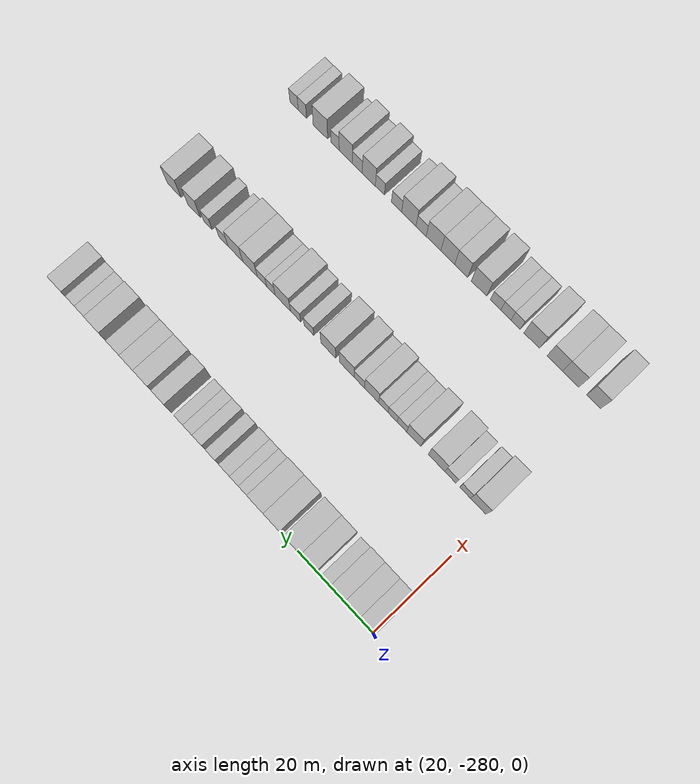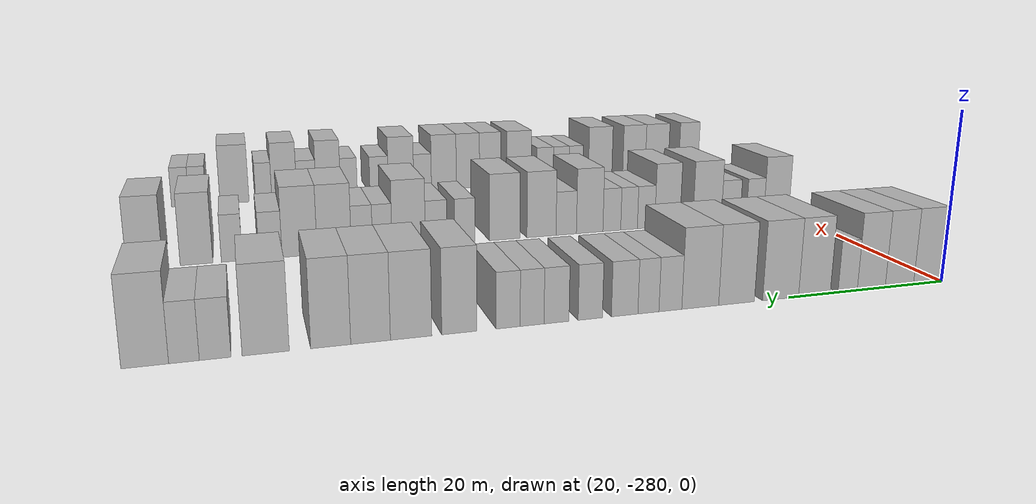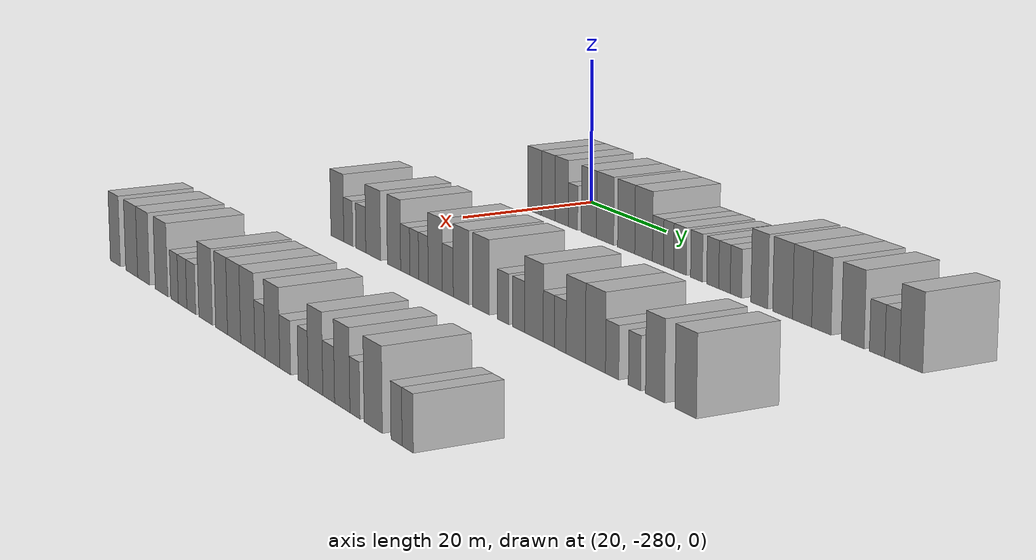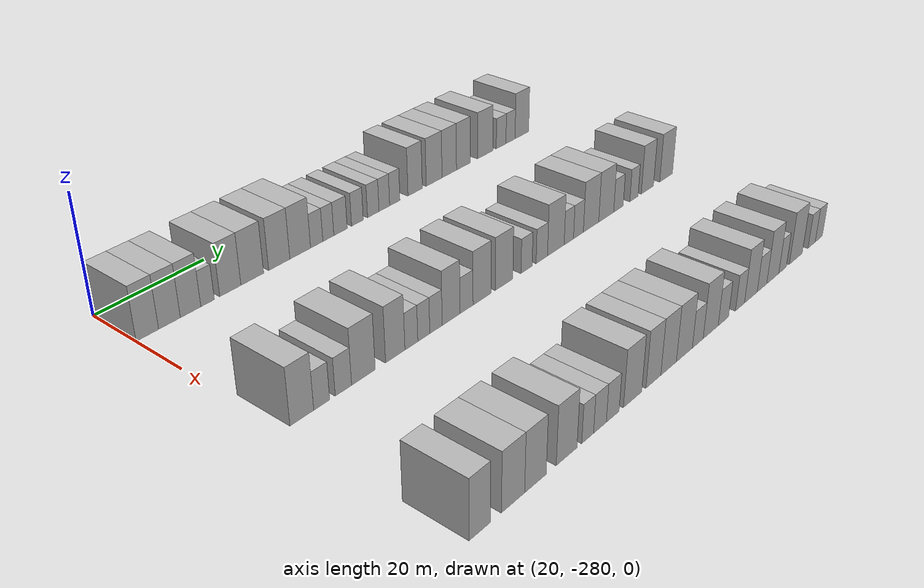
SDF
<sdf version="1.6">
 <world name="default">
  <model name="building_1">
   <static>1</static>
   <pose>25.0000 -278.0907 0 0.000000 0.000000 0.000000</pose>
   <link name="link">
    <pose>0 0 4.50 0 0 0</pose>
    <collision name="collision"><geometry><box><size>10.0000 3.8187 9.0000</size></box></geometry></collision>
    <visual name="visual">
     <cast_shadows>0</cast_shadows>
     <geometry><box><size>10.0000 3.8187 9.0000</size></box></geometry>
     <material>
      <script>
       <uri>model://HANNAS_wall/materials/scripts</uri>
       <uri>model://HANNAS_wall/materials/textures</uri>
       <name>vrc/HANNAS_wall</name>
      </script>
     </material>
    </visual>
   </link>
  </model>
  <model name="building_2">
   <static>1</static>
   <pose>25.0000 -274.2839 0 0.000000 0.000000 0.000000</pose>
   <link name="link">
    <pose>0 0 4.50 0 0 0</pose>
    <collision name="collision"><geometry><box><size>10.0000 3.7948 9.0000</size></box></geometry></collision>
    <visual name="visual">
     <cast_shadows>0</cast_shadows>
     <geometry><box><size>10.0000 3.7948 9.0000</size></box></geometry>
     <material>
      <script>
       <uri>model://HANNAS_wall/materials/scripts</uri>
       <uri>model://HANNAS_wall/materials/textures</uri>
       <name>vrc/HANNAS_wall</name>
      </script>
     </material>
    </visual>
   </link>
  </model>
  <model name="building_3">
   <static>1</static>
   <pose>25.0000 -270.5470 0 0.000000 0.000000 0.000000</pose>
   <link name="link">
    <pose>0 0 4.50 0 0 0</pose>
    <collision name="collision"><geometry><box><size>10.0000 3.6789 9.0000</size></box></geometry></collision>
    <visual name="visual">
     <cast_shadows>0</cast_shadows>
     <geometry><box><size>10.0000 3.6789 9.0000</size></box></geometry>
     <material>
      <script>
       <uri>model://HANNAS_wall/materials/scripts</uri>
       <uri>model://HANNAS_wall/materials/textures</uri>
       <name>vrc/HANNAS_wall</name>
      </script>
     </material>
    </visual>
   </link>
  </model>
  <model name="building_4">
   <static>1</static>
   <pose>25.0000 -267.4620 0 0.000000 0.000000 0.000000</pose>
   <link name="link">
    <pose>0 0 3.00 0 0 0</pose>
    <collision name="collision"><geometry><box><size>10.0000 2.4911 6.0000</size></box></geometry></collision>
    <visual name="visual">
     <cast_shadows>0</cast_shadows>
     <geometry><box><size>10.0000 2.4911 6.0000</size></box></geometry>
     <material>
      <script>
       <uri>model://HANNAS_wall/materials/scripts</uri>
       <uri>model://HANNAS_wall/materials/textures</uri>
       <name>vrc/HANNAS_wall</name>
      </script>
     </material>
    </visual>
   </link>
  </model>
  <model name="building_5">
   <static>1</static>
   <pose>25.0000 -263.2057 0 0.000000 0.000000 0.000000</pose>
   <link name="link">
    <pose>0 0 4.50 0 0 0</pose>
    <collision name="collision"><geometry><box><size>10.0000 4.0216 9.0000</size></box></geometry></collision>
    <visual name="visual">
     <cast_shadows>0</cast_shadows>
     <geometry><box><size>10.0000 4.0216 9.0000</size></box></geometry>
     <material>
      <script>
       <uri>model://HANNAS_wall/materials/scripts</uri>
       <uri>model://HANNAS_wall/materials/textures</uri>
       <name>vrc/HANNAS_wall</name>
      </script>
     </material>
    </visual>
   </link>
  </model>
  <model name="building_6">
   <static>1</static>
   <pose>25.0000 -258.9625 0 0.000000 0.000000 0.000000</pose>
   <link name="link">
    <pose>0 0 4.50 0 0 0</pose>
    <collision name="collision"><geometry><box><size>10.0000 4.4649 9.0000</size></box></geometry></collision>
    <visual name="visual">
     <cast_shadows>0</cast_shadows>
     <geometry><box><size>10.0000 4.4649 9.0000</size></box></geometry>
     <material>
      <script>
       <uri>model://HANNAS_wall/materials/scripts</uri>
       <uri>model://HANNAS_wall/materials/textures</uri>
       <name>vrc/HANNAS_wall</name>
      </script>
     </material>
    </visual>
   </link>
  </model>
  <model name="building_7">
   <static>1</static>
   <pose>25.0000 -253.5668 0 0.000000 0.000000 0.000000</pose>
   <link name="link">
    <pose>0 0 4.50 0 0 0</pose>
    <collision name="collision"><geometry><box><size>10.0000 4.3265 9.0000</size></box></geometry></collision>
    <visual name="visual">
     <cast_shadows>0</cast_shadows>
     <geometry><box><size>10.0000 4.3265 9.0000</size></box></geometry>
     <material>
      <script>
       <uri>model://HANNAS_wall/materials/scripts</uri>
       <uri>model://HANNAS_wall/materials/textures</uri>
       <name>vrc/HANNAS_wall</name>
      </script>
     </material>
    </visual>
   </link>
  </model>
  <model name="building_8">
   <static>1</static>
   <pose>25.0000 -249.2232 0 0.000000 0.000000 0.000000</pose>
   <link name="link">
    <pose>0 0 4.50 0 0 0</pose>
    <collision name="collision"><geometry><box><size>10.0000 4.3608 9.0000</size></box></geometry></collision>
    <visual name="visual">
     <cast_shadows>0</cast_shadows>
     <geometry><box><size>10.0000 4.3608 9.0000</size></box></geometry>
     <material>
      <script>
       <uri>model://HANNAS_wall/materials/scripts</uri>
       <uri>model://HANNAS_wall/materials/textures</uri>
       <name>vrc/HANNAS_wall</name>
      </script>
     </material>
    </visual>
   </link>
  </model>
  <model name="building_9">
   <static>1</static>
   <pose>25.0000 -245.7156 0 0.000000 0.000000 0.000000</pose>
   <link name="link">
    <pose>0 0 3.00 0 0 0</pose>
    <collision name="collision"><geometry><box><size>10.0000 2.6543 6.0000</size></box></geometry></collision>
    <visual name="visual">
     <cast_shadows>0</cast_shadows>
     <geometry><box><size>10.0000 2.6543 6.0000</size></box></geometry>
     <material>
      <script>
       <uri>model://HANNAS_wall/materials/scripts</uri>
       <uri>model://HANNAS_wall/materials/textures</uri>
       <name>vrc/HANNAS_wall</name>
      </script>
     </material>
    </visual>
   </link>
  </model>
  <model name="building_10">
   <static>1</static>
   <pose>25.0000 -243.1820 0 0.000000 0.000000 0.000000</pose>
   <link name="link">
    <pose>0 0 3.00 0 0 0</pose>
    <collision name="collision"><geometry><box><size>10.0000 2.4129 6.0000</size></box></geometry></collision>
    <visual name="visual">
     <cast_shadows>0</cast_shadows>
     <geometry><box><size>10.0000 2.4129 6.0000</size></box></geometry>
     <material>
      <script>
       <uri>model://HANNAS_wall/materials/scripts</uri>
       <uri>model://HANNAS_wall/materials/textures</uri>
       <name>vrc/HANNAS_wall</name>
      </script>
     </material>
    </visual>
   </link>
  </model>
  <model name="building_11">
   <static>1</static>
   <pose>25.0000 -240.4807 0 0.000000 0.000000 0.000000</pose>
   <link name="link">
    <pose>0 0 3.00 0 0 0</pose>
    <collision name="collision"><geometry><box><size>10.0000 2.9897 6.0000</size></box></geometry></collision>
    <visual name="visual">
     <cast_shadows>0</cast_shadows>
     <geometry><box><size>10.0000 2.9897 6.0000</size></box></geometry>
     <material>
      <script>
       <uri>model://HANNAS_wall/materials/scripts</uri>
       <uri>model://HANNAS_wall/materials/textures</uri>
       <name>vrc/HANNAS_wall</name>
      </script>
     </material>
    </visual>
   </link>
  </model>
  <model name="building_12">
   <static>1</static>
   <pose>25.0000 -236.6400 0 0.000000 0.000000 0.000000</pose>
   <link name="link">
    <pose>0 0 3.00 0 0 0</pose>
    <collision name="collision"><geometry><box><size>10.0000 2.6918 6.0000</size></box></geometry></collision>
    <visual name="visual">
     <cast_shadows>0</cast_shadows>
     <geometry><box><size>10.0000 2.6918 6.0000</size></box></geometry>
     <material>
      <script>
       <uri>model://HANNAS_wall/materials/scripts</uri>
       <uri>model://HANNAS_wall/materials/textures</uri>
       <name>vrc/HANNAS_wall</name>
      </script>
     </material>
    </visual>
   </link>
  </model>
  <model name="building_13">
   <static>1</static>
   <pose>25.0000 -232.9424 0 0.000000 0.000000 0.000000</pose>
   <link name="link">
    <pose>0 0 3.00 0 0 0</pose>
    <collision name="collision"><geometry><box><size>10.0000 2.7034 6.0000</size></box></geometry></collision>
    <visual name="visual">
     <cast_shadows>0</cast_shadows>
     <geometry><box><size>10.0000 2.7034 6.0000</size></box></geometry>
     <material>
      <script>
       <uri>model://HANNAS_wall/materials/scripts</uri>
       <uri>model://HANNAS_wall/materials/textures</uri>
       <name>vrc/HANNAS_wall</name>
      </script>
     </material>
    </visual>
   </link>
  </model>
  <model name="building_14">
   <static>1</static>
   <pose>25.0000 -230.3137 0 0.000000 0.000000 0.000000</pose>
   <link name="link">
    <pose>0 0 3.00 0 0 0</pose>
    <collision name="collision"><geometry><box><size>10.0000 2.5539 6.0000</size></box></geometry></collision>
    <visual name="visual">
     <cast_shadows>0</cast_shadows>
     <geometry><box><size>10.0000 2.5539 6.0000</size></box></geometry>
     <material>
      <script>
       <uri>model://HANNAS_wall/materials/scripts</uri>
       <uri>model://HANNAS_wall/materials/textures</uri>
       <name>vrc/HANNAS_wall</name>
      </script>
     </material>
    </visual>
   </link>
  </model>
  <model name="building_15">
   <static>1</static>
   <pose>25.0000 -227.7758 0 0.000000 0.000000 0.000000</pose>
   <link name="link">
    <pose>0 0 3.00 0 0 0</pose>
    <collision name="collision"><geometry><box><size>10.0000 2.5219 6.0000</size></box></geometry></collision>
    <visual name="visual">
     <cast_shadows>0</cast_shadows>
     <geometry><box><size>10.0000 2.5219 6.0000</size></box></geometry>
     <material>
      <script>
       <uri>model://HANNAS_wall/materials/scripts</uri>
       <uri>model://HANNAS_wall/materials/textures</uri>
       <name>vrc/HANNAS_wall</name>
      </script>
     </material>
    </visual>
   </link>
  </model>
  <model name="building_16">
   <static>1</static>
   <pose>25.0000 -222.7067 0 0.000000 0.000000 0.000000</pose>
   <link name="link">
    <pose>0 0 4.50 0 0 0</pose>
    <collision name="collision"><geometry><box><size>10.0000 3.6162 9.0000</size></box></geometry></collision>
    <visual name="visual">
     <cast_shadows>0</cast_shadows>
     <geometry><box><size>10.0000 3.6162 9.0000</size></box></geometry>
     <material>
      <script>
       <uri>model://HANNAS_wall/materials/scripts</uri>
       <uri>model://HANNAS_wall/materials/textures</uri>
       <name>vrc/HANNAS_wall</name>
      </script>
     </material>
    </visual>
   </link>
  </model>
  <model name="building_17">
   <static>1</static>
   <pose>25.0000 -217.8327 0 0.000000 0.000000 0.000000</pose>
   <link name="link">
    <pose>0 0 4.50 0 0 0</pose>
    <collision name="collision"><geometry><box><size>10.0000 4.1318 9.0000</size></box></geometry></collision>
    <visual name="visual">
     <cast_shadows>0</cast_shadows>
     <geometry><box><size>10.0000 4.1318 9.0000</size></box></geometry>
     <material>
      <script>
       <uri>model://HANNAS_wall/materials/scripts</uri>
       <uri>model://HANNAS_wall/materials/textures</uri>
       <name>vrc/HANNAS_wall</name>
      </script>
     </material>
    </visual>
   </link>
  </model>
  <model name="building_18">
   <static>1</static>
   <pose>25.0000 -213.8320 0 0.000000 0.000000 0.000000</pose>
   <link name="link">
    <pose>0 0 4.50 0 0 0</pose>
    <collision name="collision"><geometry><box><size>10.0000 3.8697 9.0000</size></box></geometry></collision>
    <visual name="visual">
     <cast_shadows>0</cast_shadows>
     <geometry><box><size>10.0000 3.8697 9.0000</size></box></geometry>
     <material>
      <script>
       <uri>model://HANNAS_wall/materials/scripts</uri>
       <uri>model://HANNAS_wall/materials/textures</uri>
       <name>vrc/HANNAS_wall</name>
      </script>
     </material>
    </visual>
   </link>
  </model>
  <model name="building_19">
   <static>1</static>
   <pose>25.0000 -209.9862 0 0.000000 0.000000 0.000000</pose>
   <link name="link">
    <pose>0 0 4.50 0 0 0</pose>
    <collision name="collision"><geometry><box><size>10.0000 3.8218 9.0000</size></box></geometry></collision>
    <visual name="visual">
     <cast_shadows>0</cast_shadows>
     <geometry><box><size>10.0000 3.8218 9.0000</size></box></geometry>
     <material>
      <script>
       <uri>model://HANNAS_wall/materials/scripts</uri>
       <uri>model://HANNAS_wall/materials/textures</uri>
       <name>vrc/HANNAS_wall</name>
      </script>
     </material>
    </visual>
   </link>
  </model>
  <model name="building_20">
   <static>1</static>
   <pose>25.0000 -203.9006 0 0.000000 0.000000 0.000000</pose>
   <link name="link">
    <pose>0 0 4.50 0 0 0</pose>
    <collision name="collision"><geometry><box><size>10.0000 4.3495 9.0000</size></box></geometry></collision>
    <visual name="visual">
     <cast_shadows>0</cast_shadows>
     <geometry><box><size>10.0000 4.3495 9.0000</size></box></geometry>
     <material>
      <script>
       <uri>model://HANNAS_wall/materials/scripts</uri>
       <uri>model://HANNAS_wall/materials/textures</uri>
       <name>vrc/HANNAS_wall</name>
      </script>
     </material>
    </visual>
   </link>
  </model>
  <model name="building_21">
   <static>1</static>
   <pose>25.0000 -199.3027 0 0.000000 0.000000 0.000000</pose>
   <link name="link">
    <pose>0 0 3.00 0 0 0</pose>
    <collision name="collision"><geometry><box><size>10.0000 2.8463 6.0000</size></box></geometry></collision>
    <visual name="visual">
     <cast_shadows>0</cast_shadows>
     <geometry><box><size>10.0000 2.8463 6.0000</size></box></geometry>
     <material>
      <script>
       <uri>model://HANNAS_wall/materials/scripts</uri>
       <uri>model://HANNAS_wall/materials/textures</uri>
       <name>vrc/HANNAS_wall</name>
      </script>
     </material>
    </visual>
   </link>
  </model>
  <model name="building_22">
   <static>1</static>
   <pose>25.0000 -196.5286 0 0.000000 0.000000 0.000000</pose>
   <link name="link">
    <pose>0 0 3.00 0 0 0</pose>
    <collision name="collision"><geometry><box><size>10.0000 2.7019 6.0000</size></box></geometry></collision>
    <visual name="visual">
     <cast_shadows>0</cast_shadows>
     <geometry><box><size>10.0000 2.7019 6.0000</size></box></geometry>
     <material>
      <script>
       <uri>model://HANNAS_wall/materials/scripts</uri>
       <uri>model://HANNAS_wall/materials/textures</uri>
       <name>vrc/HANNAS_wall</name>
      </script>
     </material>
    </visual>
   </link>
  </model>
  <model name="building_23">
   <static>1</static>
   <pose>25.0000 -193.1107 0 0.000000 0.000000 0.000000</pose>
   <link name="link">
    <pose>0 0 4.50 0 0 0</pose>
    <collision name="collision"><geometry><box><size>10.0000 4.1340 9.0000</size></box></geometry></collision>
    <visual name="visual">
     <cast_shadows>0</cast_shadows>
     <geometry><box><size>10.0000 4.1340 9.0000</size></box></geometry>
     <material>
      <script>
       <uri>model://HANNAS_wall/materials/scripts</uri>
       <uri>model://HANNAS_wall/materials/textures</uri>
       <name>vrc/HANNAS_wall</name>
      </script>
     </material>
    </visual>
   </link>
  </model>
  <model name="building_144">
   <static>1</static>
   <pose>55.0000 -276.9627 0 0.000000 0.000000 0.000000</pose>
   <link name="link">
    <pose>0 0 4.50 0 0 0</pose>
    <collision name="collision"><geometry><box><size>10.0000 4.0746 9.0000</size></box></geometry></collision>
    <visual name="visual">
     <cast_shadows>0</cast_shadows>
     <geometry><box><size>10.0000 4.0746 9.0000</size></box></geometry>
     <material>
      <script>
       <uri>model://HANNAS_wall/materials/scripts</uri>
       <uri>model://HANNAS_wall/materials/textures</uri>
       <name>vrc/HANNAS_wall</name>
      </script>
     </material>
    </visual>
   </link>
  </model>
  <model name="building_145">
   <static>1</static>
   <pose>55.0000 -273.5255 0 0.000000 0.000000 0.000000</pose>
   <link name="link">
    <pose>0 0 3.00 0 0 0</pose>
    <collision name="collision"><geometry><box><size>10.0000 2.7997 6.0000</size></box></geometry></collision>
    <visual name="visual">
     <cast_shadows>0</cast_shadows>
     <geometry><box><size>10.0000 2.7997 6.0000</size></box></geometry>
     <material>
      <script>
       <uri>model://HANNAS_wall/materials/scripts</uri>
       <uri>model://HANNAS_wall/materials/textures</uri>
       <name>vrc/HANNAS_wall</name>
      </script>
     </material>
    </visual>
   </link>
  </model>
  <model name="building_146">
   <static>1</static>
   <pose>55.0000 -269.6340 0 0.000000 0.000000 0.000000</pose>
   <link name="link">
    <pose>0 0 3.00 0 0 0</pose>
    <collision name="collision"><geometry><box><size>10.0000 2.9833 6.0000</size></box></geometry></collision>
    <visual name="visual">
     <cast_shadows>0</cast_shadows>
     <geometry><box><size>10.0000 2.9833 6.0000</size></box></geometry>
     <material>
      <script>
       <uri>model://HANNAS_wall/materials/scripts</uri>
       <uri>model://HANNAS_wall/materials/textures</uri>
       <name>vrc/HANNAS_wall</name>
      </script>
     </material>
    </visual>
   </link>
  </model>
  <model name="building_147">
   <static>1</static>
   <pose>55.0000 -265.9167 0 0.000000 0.000000 0.000000</pose>
   <link name="link">
    <pose>0 0 4.50 0 0 0</pose>
    <collision name="collision"><geometry><box><size>10.0000 4.4515 9.0000</size></box></geometry></collision>
    <visual name="visual">
     <cast_shadows>0</cast_shadows>
     <geometry><box><size>10.0000 4.4515 9.0000</size></box></geometry>
     <material>
      <script>
       <uri>model://HANNAS_wall/materials/scripts</uri>
       <uri>model://HANNAS_wall/materials/textures</uri>
       <name>vrc/HANNAS_wall</name>
      </script>
     </material>
    </visual>
   </link>
  </model>
  <model name="building_148">
   <static>1</static>
   <pose>55.0000 -259.7718 0 0.000000 0.000000 0.000000</pose>
   <link name="link">
    <pose>0 0 4.50 0 0 0</pose>
    <collision name="collision"><geometry><box><size>10.0000 3.8382 9.0000</size></box></geometry></collision>
    <visual name="visual">
     <cast_shadows>0</cast_shadows>
     <geometry><box><size>10.0000 3.8382 9.0000</size></box></geometry>
     <material>
      <script>
       <uri>model://HANNAS_wall/materials/scripts</uri>
       <uri>model://HANNAS_wall/materials/textures</uri>
       <name>vrc/HANNAS_wall</name>
      </script>
     </material>
    </visual>
   </link>
  </model>
  <model name="building_149">
   <static>1</static>
   <pose>55.0000 -256.5441 0 0.000000 0.000000 0.000000</pose>
   <link name="link">
    <pose>0 0 3.00 0 0 0</pose>
    <collision name="collision"><geometry><box><size>10.0000 2.6173 6.0000</size></box></geometry></collision>
    <visual name="visual">
     <cast_shadows>0</cast_shadows>
     <geometry><box><size>10.0000 2.6173 6.0000</size></box></geometry>
     <material>
      <script>
       <uri>model://HANNAS_wall/materials/scripts</uri>
       <uri>model://HANNAS_wall/materials/textures</uri>
       <name>vrc/HANNAS_wall</name>
      </script>
     </material>
    </visual>
   </link>
  </model>
  <model name="building_150">
   <static>1</static>
   <pose>55.0000 -253.9943 0 0.000000 0.000000 0.000000</pose>
   <link name="link">
    <pose>0 0 3.00 0 0 0</pose>
    <collision name="collision"><geometry><box><size>10.0000 2.4825 6.0000</size></box></geometry></collision>
    <visual name="visual">
     <cast_shadows>0</cast_shadows>
     <geometry><box><size>10.0000 2.4825 6.0000</size></box></geometry>
     <material>
      <script>
       <uri>model://HANNAS_wall/materials/scripts</uri>
       <uri>model://HANNAS_wall/materials/textures</uri>
       <name>vrc/HANNAS_wall</name>
      </script>
     </material>
    </visual>
   </link>
  </model>
  <model name="building_151">
   <static>1</static>
   <pose>55.0000 -251.4389 0 0.000000 0.000000 0.000000</pose>
   <link name="link">
    <pose>0 0 3.00 0 0 0</pose>
    <collision name="collision"><geometry><box><size>10.0000 2.6282 6.0000</size></box></geometry></collision>
    <visual name="visual">
     <cast_shadows>0</cast_shadows>
     <geometry><box><size>10.0000 2.6282 6.0000</size></box></geometry>
     <material>
      <script>
       <uri>model://HANNAS_wall/materials/scripts</uri>
       <uri>model://HANNAS_wall/materials/textures</uri>
       <name>vrc/HANNAS_wall</name>
      </script>
     </material>
    </visual>
   </link>
  </model>
  <model name="building_152">
   <static>1</static>
   <pose>55.0000 -248.1934 0 0.000000 0.000000 0.000000</pose>
   <link name="link">
    <pose>0 0 4.50 0 0 0</pose>
    <collision name="collision"><geometry><box><size>10.0000 3.8627 9.0000</size></box></geometry></collision>
    <visual name="visual">
     <cast_shadows>0</cast_shadows>
     <geometry><box><size>10.0000 3.8627 9.0000</size></box></geometry>
     <material>
      <script>
       <uri>model://HANNAS_wall/materials/scripts</uri>
       <uri>model://HANNAS_wall/materials/textures</uri>
       <name>vrc/HANNAS_wall</name>
      </script>
     </material>
    </visual>
   </link>
  </model>
  <model name="building_153">
   <static>1</static>
   <pose>55.0000 -244.7988 0 0.000000 0.000000 0.000000</pose>
   <link name="link">
    <pose>0 0 3.00 0 0 0</pose>
    <collision name="collision"><geometry><box><size>10.0000 2.9266 6.0000</size></box></geometry></collision>
    <visual name="visual">
     <cast_shadows>0</cast_shadows>
     <geometry><box><size>10.0000 2.9266 6.0000</size></box></geometry>
     <material>
      <script>
       <uri>model://HANNAS_wall/materials/scripts</uri>
       <uri>model://HANNAS_wall/materials/textures</uri>
       <name>vrc/HANNAS_wall</name>
      </script>
     </material>
    </visual>
   </link>
  </model>
  <model name="building_154">
   <static>1</static>
   <pose>55.0000 -241.2741 0 0.000000 0.000000 0.000000</pose>
   <link name="link">
    <pose>0 0 4.50 0 0 0</pose>
    <collision name="collision"><geometry><box><size>10.0000 4.1227 9.0000</size></box></geometry></collision>
    <visual name="visual">
     <cast_shadows>0</cast_shadows>
     <geometry><box><size>10.0000 4.1227 9.0000</size></box></geometry>
     <material>
      <script>
       <uri>model://HANNAS_wall/materials/scripts</uri>
       <uri>model://HANNAS_wall/materials/textures</uri>
       <name>vrc/HANNAS_wall</name>
      </script>
     </material>
    </visual>
   </link>
  </model>
  <model name="building_155">
   <static>1</static>
   <pose>55.0000 -236.1195 0 0.000000 0.000000 0.000000</pose>
   <link name="link">
    <pose>0 0 4.50 0 0 0</pose>
    <collision name="collision"><geometry><box><size>10.0000 4.1864 9.0000</size></box></geometry></collision>
    <visual name="visual">
     <cast_shadows>0</cast_shadows>
     <geometry><box><size>10.0000 4.1864 9.0000</size></box></geometry>
     <material>
      <script>
       <uri>model://HANNAS_wall/materials/scripts</uri>
       <uri>model://HANNAS_wall/materials/textures</uri>
       <name>vrc/HANNAS_wall</name>
      </script>
     </material>
    </visual>
   </link>
  </model>
  <model name="building_156">
   <static>1</static>
   <pose>55.0000 -230.6456 0 0.000000 0.000000 0.000000</pose>
   <link name="link">
    <pose>0 0 3.00 0 0 0</pose>
    <collision name="collision"><geometry><box><size>10.0000 2.7615 6.0000</size></box></geometry></collision>
    <visual name="visual">
     <cast_shadows>0</cast_shadows>
     <geometry><box><size>10.0000 2.7615 6.0000</size></box></geometry>
     <material>
      <script>
       <uri>model://HANNAS_wall/materials/scripts</uri>
       <uri>model://HANNAS_wall/materials/textures</uri>
       <name>vrc/HANNAS_wall</name>
      </script>
     </material>
    </visual>
   </link>
  </model>
  <model name="building_157">
   <static>1</static>
   <pose>55.0000 -226.8140 0 0.000000 0.000000 0.000000</pose>
   <link name="link">
    <pose>0 0 3.00 0 0 0</pose>
    <collision name="collision"><geometry><box><size>10.0000 2.9017 6.0000</size></box></geometry></collision>
    <visual name="visual">
     <cast_shadows>0</cast_shadows>
     <geometry><box><size>10.0000 2.9017 6.0000</size></box></geometry>
     <material>
      <script>
       <uri>model://HANNAS_wall/materials/scripts</uri>
       <uri>model://HANNAS_wall/materials/textures</uri>
       <name>vrc/HANNAS_wall</name>
      </script>
     </material>
    </visual>
   </link>
  </model>
  <model name="building_158">
   <static>1</static>
   <pose>55.0000 -223.1755 0 0.000000 0.000000 0.000000</pose>
   <link name="link">
    <pose>0 0 4.50 0 0 0</pose>
    <collision name="collision"><geometry><box><size>10.0000 4.3752 9.0000</size></box></geometry></collision>
    <visual name="visual">
     <cast_shadows>0</cast_shadows>
     <geometry><box><size>10.0000 4.3752 9.0000</size></box></geometry>
     <material>
      <script>
       <uri>model://HANNAS_wall/materials/scripts</uri>
       <uri>model://HANNAS_wall/materials/textures</uri>
       <name>vrc/HANNAS_wall</name>
      </script>
     </material>
    </visual>
   </link>
  </model>
  <model name="building_159">
   <static>1</static>
   <pose>55.0000 -219.7284 0 0.000000 0.000000 0.000000</pose>
   <link name="link">
    <pose>0 0 3.00 0 0 0</pose>
    <collision name="collision"><geometry><box><size>10.0000 2.5190 6.0000</size></box></geometry></collision>
    <visual name="visual">
     <cast_shadows>0</cast_shadows>
     <geometry><box><size>10.0000 2.5190 6.0000</size></box></geometry>
     <material>
      <script>
       <uri>model://HANNAS_wall/materials/scripts</uri>
       <uri>model://HANNAS_wall/materials/textures</uri>
       <name>vrc/HANNAS_wall</name>
      </script>
     </material>
    </visual>
   </link>
  </model>
  <model name="building_160">
   <static>1</static>
   <pose>55.0000 -217.1161 0 0.000000 0.000000 0.000000</pose>
   <link name="link">
    <pose>0 0 3.00 0 0 0</pose>
    <collision name="collision"><geometry><box><size>10.0000 2.7055 6.0000</size></box></geometry></collision>
    <visual name="visual">
     <cast_shadows>0</cast_shadows>
     <geometry><box><size>10.0000 2.7055 6.0000</size></box></geometry>
     <material>
      <script>
       <uri>model://HANNAS_wall/materials/scripts</uri>
       <uri>model://HANNAS_wall/materials/textures</uri>
       <name>vrc/HANNAS_wall</name>
      </script>
     </material>
    </visual>
   </link>
  </model>
  <model name="building_161">
   <static>1</static>
   <pose>55.0000 -213.6052 0 0.000000 0.000000 0.000000</pose>
   <link name="link">
    <pose>0 0 4.50 0 0 0</pose>
    <collision name="collision"><geometry><box><size>10.0000 4.3162 9.0000</size></box></geometry></collision>
    <visual name="visual">
     <cast_shadows>0</cast_shadows>
     <geometry><box><size>10.0000 4.3162 9.0000</size></box></geometry>
     <material>
      <script>
       <uri>model://HANNAS_wall/materials/scripts</uri>
       <uri>model://HANNAS_wall/materials/textures</uri>
       <name>vrc/HANNAS_wall</name>
      </script>
     </material>
    </visual>
   </link>
  </model>
  <model name="building_162">
   <static>1</static>
   <pose>55.0000 -209.2797 0 0.000000 0.000000 0.000000</pose>
   <link name="link">
    <pose>0 0 4.50 0 0 0</pose>
    <collision name="collision"><geometry><box><size>10.0000 4.3348 9.0000</size></box></geometry></collision>
    <visual name="visual">
     <cast_shadows>0</cast_shadows>
     <geometry><box><size>10.0000 4.3348 9.0000</size></box></geometry>
     <material>
      <script>
       <uri>model://HANNAS_wall/materials/scripts</uri>
       <uri>model://HANNAS_wall/materials/textures</uri>
       <name>vrc/HANNAS_wall</name>
      </script>
     </material>
    </visual>
   </link>
  </model>
  <model name="building_163">
   <static>1</static>
   <pose>55.0000 -205.7073 0 0.000000 0.000000 0.000000</pose>
   <link name="link">
    <pose>0 0 3.00 0 0 0</pose>
    <collision name="collision"><geometry><box><size>10.0000 2.8101 6.0000</size></box></geometry></collision>
    <visual name="visual">
     <cast_shadows>0</cast_shadows>
     <geometry><box><size>10.0000 2.8101 6.0000</size></box></geometry>
     <material>
      <script>
       <uri>model://HANNAS_wall/materials/scripts</uri>
       <uri>model://HANNAS_wall/materials/textures</uri>
       <name>vrc/HANNAS_wall</name>
      </script>
     </material>
    </visual>
   </link>
  </model>
  <model name="building_164">
   <static>1</static>
   <pose>55.0000 -201.0446 0 0.000000 0.000000 0.000000</pose>
   <link name="link">
    <pose>0 0 3.00 0 0 0</pose>
    <collision name="collision"><geometry><box><size>10.0000 2.5152 6.0000</size></box></geometry></collision>
    <visual name="visual">
     <cast_shadows>0</cast_shadows>
     <geometry><box><size>10.0000 2.5152 6.0000</size></box></geometry>
     <material>
      <script>
       <uri>model://HANNAS_wall/materials/scripts</uri>
       <uri>model://HANNAS_wall/materials/textures</uri>
       <name>vrc/HANNAS_wall</name>
      </script>
     </material>
    </visual>
   </link>
  </model>
  <model name="building_165">
   <static>1</static>
   <pose>55.0000 -196.8730 0 0.000000 0.000000 0.000000</pose>
   <link name="link">
    <pose>0 0 4.50 0 0 0</pose>
    <collision name="collision"><geometry><box><size>10.0000 3.8281 9.0000</size></box></geometry></collision>
    <visual name="visual">
     <cast_shadows>0</cast_shadows>
     <geometry><box><size>10.0000 3.8281 9.0000</size></box></geometry>
     <material>
      <script>
       <uri>model://HANNAS_wall/materials/scripts</uri>
       <uri>model://HANNAS_wall/materials/textures</uri>
       <name>vrc/HANNAS_wall</name>
      </script>
     </material>
    </visual>
   </link>
  </model>
  <model name="building_166">
   <static>1</static>
   <pose>55.0000 -190.8849 0 0.000000 0.000000 0.000000</pose>
   <link name="link">
    <pose>0 0 4.50 0 0 0</pose>
    <collision name="collision"><geometry><box><size>10.0000 4.1480 9.0000</size></box></geometry></collision>
    <visual name="visual">
     <cast_shadows>0</cast_shadows>
     <geometry><box><size>10.0000 4.1480 9.0000</size></box></geometry>
     <material>
      <script>
       <uri>model://HANNAS_wall/materials/scripts</uri>
       <uri>model://HANNAS_wall/materials/textures</uri>
       <name>vrc/HANNAS_wall</name>
      </script>
     </material>
    </visual>
   </link>
  </model>
  <model name="building_272">
   <static>1</static>
   <pose>85.0000 -278.1481 0 0.000000 0.000000 0.000000</pose>
   <link name="link">
    <pose>0 0 4.50 0 0 0</pose>
    <collision name="collision"><geometry><box><size>10.0000 3.7038 9.0000</size></box></geometry></collision>
    <visual name="visual">
     <cast_shadows>0</cast_shadows>
     <geometry><box><size>10.0000 3.7038 9.0000</size></box></geometry>
     <material>
      <script>
       <uri>model://HANNAS_wall/materials/scripts</uri>
       <uri>model://HANNAS_wall/materials/textures</uri>
       <name>vrc/HANNAS_wall</name>
      </script>
     </material>
    </visual>
   </link>
  </model>
  <model name="building_273">
   <static>1</static>
   <pose>85.0000 -272.1416 0 0.000000 0.000000 0.000000</pose>
   <link name="link">
    <pose>0 0 4.50 0 0 0</pose>
    <collision name="collision"><geometry><box><size>10.0000 4.3092 9.0000</size></box></geometry></collision>
    <visual name="visual">
     <cast_shadows>0</cast_shadows>
     <geometry><box><size>10.0000 4.3092 9.0000</size></box></geometry>
     <material>
      <script>
       <uri>model://HANNAS_wall/materials/scripts</uri>
       <uri>model://HANNAS_wall/materials/textures</uri>
       <name>vrc/HANNAS_wall</name>
      </script>
     </material>
    </visual>
   </link>
  </model>
  <model name="building_274">
   <static>1</static>
   <pose>85.0000 -267.9036 0 0.000000 0.000000 0.000000</pose>
   <link name="link">
    <pose>0 0 4.50 0 0 0</pose>
    <collision name="collision"><geometry><box><size>10.0000 4.1668 9.0000</size></box></geometry></collision>
    <visual name="visual">
     <cast_shadows>0</cast_shadows>
     <geometry><box><size>10.0000 4.1668 9.0000</size></box></geometry>
     <material>
      <script>
       <uri>model://HANNAS_wall/materials/scripts</uri>
       <uri>model://HANNAS_wall/materials/textures</uri>
       <name>vrc/HANNAS_wall</name>
      </script>
     </material>
    </visual>
   </link>
  </model>
  <model name="building_275">
   <static>1</static>
   <pose>85.0000 -261.6937 0 0.000000 0.000000 0.000000</pose>
   <link name="link">
    <pose>0 0 4.50 0 0 0</pose>
    <collision name="collision"><geometry><box><size>10.0000 4.2529 9.0000</size></box></geometry></collision>
    <visual name="visual">
     <cast_shadows>0</cast_shadows>
     <geometry><box><size>10.0000 4.2529 9.0000</size></box></geometry>
     <material>
      <script>
       <uri>model://HANNAS_wall/materials/scripts</uri>
       <uri>model://HANNAS_wall/materials/textures</uri>
       <name>vrc/HANNAS_wall</name>
      </script>
     </material>
    </visual>
   </link>
  </model>
  <model name="building_276">
   <static>1</static>
   <pose>85.0000 -257.3078 0 0.000000 0.000000 0.000000</pose>
   <link name="link">
    <pose>0 0 3.00 0 0 0</pose>
    <collision name="collision"><geometry><box><size>10.0000 2.5189 6.0000</size></box></geometry></collision>
    <visual name="visual">
     <cast_shadows>0</cast_shadows>
     <geometry><box><size>10.0000 2.5189 6.0000</size></box></geometry>
     <material>
      <script>
       <uri>model://HANNAS_wall/materials/scripts</uri>
       <uri>model://HANNAS_wall/materials/textures</uri>
       <name>vrc/HANNAS_wall</name>
      </script>
     </material>
    </visual>
   </link>
  </model>
  <model name="building_277">
   <static>1</static>
   <pose>85.0000 -254.6587 0 0.000000 0.000000 0.000000</pose>
   <link name="link">
    <pose>0 0 3.00 0 0 0</pose>
    <collision name="collision"><geometry><box><size>10.0000 2.7794 6.0000</size></box></geometry></collision>
    <visual name="visual">
     <cast_shadows>0</cast_shadows>
     <geometry><box><size>10.0000 2.7794 6.0000</size></box></geometry>
     <material>
      <script>
       <uri>model://HANNAS_wall/materials/scripts</uri>
       <uri>model://HANNAS_wall/materials/textures</uri>
       <name>vrc/HANNAS_wall</name>
      </script>
     </material>
    </visual>
   </link>
  </model>
  <model name="building_278">
   <static>1</static>
   <pose>85.0000 -251.8357 0 0.000000 0.000000 0.000000</pose>
   <link name="link">
    <pose>0 0 3.00 0 0 0</pose>
    <collision name="collision"><geometry><box><size>10.0000 2.8665 6.0000</size></box></geometry></collision>
    <visual name="visual">
     <cast_shadows>0</cast_shadows>
     <geometry><box><size>10.0000 2.8665 6.0000</size></box></geometry>
     <material>
      <script>
       <uri>model://HANNAS_wall/materials/scripts</uri>
       <uri>model://HANNAS_wall/materials/textures</uri>
       <name>vrc/HANNAS_wall</name>
      </script>
     </material>
    </visual>
   </link>
  </model>
  <model name="building_279">
   <static>1</static>
   <pose>85.0000 -247.2729 0 0.000000 0.000000 0.000000</pose>
   <link name="link">
    <pose>0 0 4.50 0 0 0</pose>
    <collision name="collision"><geometry><box><size>10.0000 4.2591 9.0000</size></box></geometry></collision>
    <visual name="visual">
     <cast_shadows>0</cast_shadows>
     <geometry><box><size>10.0000 4.2591 9.0000</size></box></geometry>
     <material>
      <script>
       <uri>model://HANNAS_wall/materials/scripts</uri>
       <uri>model://HANNAS_wall/materials/textures</uri>
       <name>vrc/HANNAS_wall</name>
      </script>
     </material>
    </visual>
   </link>
  </model>
  <model name="building_280">
   <static>1</static>
   <pose>85.0000 -242.3293 0 0.000000 0.000000 0.000000</pose>
   <link name="link">
    <pose>0 0 4.50 0 0 0</pose>
    <collision name="collision"><geometry><box><size>10.0000 3.6280 9.0000</size></box></geometry></collision>
    <visual name="visual">
     <cast_shadows>0</cast_shadows>
     <geometry><box><size>10.0000 3.6280 9.0000</size></box></geometry>
     <material>
      <script>
       <uri>model://HANNAS_wall/materials/scripts</uri>
       <uri>model://HANNAS_wall/materials/textures</uri>
       <name>vrc/HANNAS_wall</name>
      </script>
     </material>
    </visual>
   </link>
  </model>
  <model name="building_281">
   <static>1</static>
   <pose>85.0000 -238.5585 0 0.000000 0.000000 0.000000</pose>
   <link name="link">
    <pose>0 0 4.50 0 0 0</pose>
    <collision name="collision"><geometry><box><size>10.0000 3.9138 9.0000</size></box></geometry></collision>
    <visual name="visual">
     <cast_shadows>0</cast_shadows>
     <geometry><box><size>10.0000 3.9138 9.0000</size></box></geometry>
     <material>
      <script>
       <uri>model://HANNAS_wall/materials/scripts</uri>
       <uri>model://HANNAS_wall/materials/textures</uri>
       <name>vrc/HANNAS_wall</name>
      </script>
     </material>
    </visual>
   </link>
  </model>
  <model name="building_282">
   <static>1</static>
   <pose>85.0000 -234.5316 0 0.000000 0.000000 0.000000</pose>
   <link name="link">
    <pose>0 0 4.50 0 0 0</pose>
    <collision name="collision"><geometry><box><size>10.0000 4.1399 9.0000</size></box></geometry></collision>
    <visual name="visual">
     <cast_shadows>0</cast_shadows>
     <geometry><box><size>10.0000 4.1399 9.0000</size></box></geometry>
     <material>
      <script>
       <uri>model://HANNAS_wall/materials/scripts</uri>
       <uri>model://HANNAS_wall/materials/textures</uri>
       <name>vrc/HANNAS_wall</name>
      </script>
     </material>
    </visual>
   </link>
  </model>
  <model name="building_283">
   <static>1</static>
   <pose>85.0000 -231.0145 0 0.000000 0.000000 0.000000</pose>
   <link name="link">
    <pose>0 0 3.00 0 0 0</pose>
    <collision name="collision"><geometry><box><size>10.0000 2.8943 6.0000</size></box></geometry></collision>
    <visual name="visual">
     <cast_shadows>0</cast_shadows>
     <geometry><box><size>10.0000 2.8943 6.0000</size></box></geometry>
     <material>
      <script>
       <uri>model://HANNAS_wall/materials/scripts</uri>
       <uri>model://HANNAS_wall/materials/textures</uri>
       <name>vrc/HANNAS_wall</name>
      </script>
     </material>
    </visual>
   </link>
  </model>
  <model name="building_284">
   <static>1</static>
   <pose>85.0000 -227.5075 0 0.000000 0.000000 0.000000</pose>
   <link name="link">
    <pose>0 0 4.50 0 0 0</pose>
    <collision name="collision"><geometry><box><size>10.0000 4.1199 9.0000</size></box></geometry></collision>
    <visual name="visual">
     <cast_shadows>0</cast_shadows>
     <geometry><box><size>10.0000 4.1199 9.0000</size></box></geometry>
     <material>
      <script>
       <uri>model://HANNAS_wall/materials/scripts</uri>
       <uri>model://HANNAS_wall/materials/textures</uri>
       <name>vrc/HANNAS_wall</name>
      </script>
     </material>
    </visual>
   </link>
  </model>
  <model name="building_285">
   <static>1</static>
   <pose>85.0000 -223.9719 0 0.000000 0.000000 0.000000</pose>
   <link name="link">
    <pose>0 0 3.00 0 0 0</pose>
    <collision name="collision"><geometry><box><size>10.0000 2.9512 6.0000</size></box></geometry></collision>
    <visual name="visual">
     <cast_shadows>0</cast_shadows>
     <geometry><box><size>10.0000 2.9512 6.0000</size></box></geometry>
     <material>
      <script>
       <uri>model://HANNAS_wall/materials/scripts</uri>
       <uri>model://HANNAS_wall/materials/textures</uri>
       <name>vrc/HANNAS_wall</name>
      </script>
     </material>
    </visual>
   </link>
  </model>
  <model name="building_286">
   <static>1</static>
   <pose>85.0000 -219.1752 0 0.000000 0.000000 0.000000</pose>
   <link name="link">
    <pose>0 0 3.00 0 0 0</pose>
    <collision name="collision"><geometry><box><size>10.0000 2.6423 6.0000</size></box></geometry></collision>
    <visual name="visual">
     <cast_shadows>0</cast_shadows>
     <geometry><box><size>10.0000 2.6423 6.0000</size></box></geometry>
     <material>
      <script>
       <uri>model://HANNAS_wall/materials/scripts</uri>
       <uri>model://HANNAS_wall/materials/textures</uri>
       <name>vrc/HANNAS_wall</name>
      </script>
     </material>
    </visual>
   </link>
  </model>
  <model name="building_287">
   <static>1</static>
   <pose>85.0000 -215.9440 0 0.000000 0.000000 0.000000</pose>
   <link name="link">
    <pose>0 0 4.50 0 0 0</pose>
    <collision name="collision"><geometry><box><size>10.0000 3.8201 9.0000</size></box></geometry></collision>
    <visual name="visual">
     <cast_shadows>0</cast_shadows>
     <geometry><box><size>10.0000 3.8201 9.0000</size></box></geometry>
     <material>
      <script>
       <uri>model://HANNAS_wall/materials/scripts</uri>
       <uri>model://HANNAS_wall/materials/textures</uri>
       <name>vrc/HANNAS_wall</name>
      </script>
     </material>
    </visual>
   </link>
  </model>
  <model name="building_288">
   <static>1</static>
   <pose>85.0000 -212.5510 0 0.000000 0.000000 0.000000</pose>
   <link name="link">
    <pose>0 0 3.00 0 0 0</pose>
    <collision name="collision"><geometry><box><size>10.0000 2.9658 6.0000</size></box></geometry></collision>
    <visual name="visual">
     <cast_shadows>0</cast_shadows>
     <geometry><box><size>10.0000 2.9658 6.0000</size></box></geometry>
     <material>
      <script>
       <uri>model://HANNAS_wall/materials/scripts</uri>
       <uri>model://HANNAS_wall/materials/textures</uri>
       <name>vrc/HANNAS_wall</name>
      </script>
     </material>
    </visual>
   </link>
  </model>
  <model name="building_289">
   <static>1</static>
   <pose>85.0000 -209.1619 0 0.000000 0.000000 0.000000</pose>
   <link name="link">
    <pose>0 0 4.50 0 0 0</pose>
    <collision name="collision"><geometry><box><size>10.0000 3.8125 9.0000</size></box></geometry></collision>
    <visual name="visual">
     <cast_shadows>0</cast_shadows>
     <geometry><box><size>10.0000 3.8125 9.0000</size></box></geometry>
     <material>
      <script>
       <uri>model://HANNAS_wall/materials/scripts</uri>
       <uri>model://HANNAS_wall/materials/textures</uri>
       <name>vrc/HANNAS_wall</name>
      </script>
     </material>
    </visual>
   </link>
  </model>
  <model name="building_290">
   <static>1</static>
   <pose>85.0000 -206.0425 0 0.000000 0.000000 0.000000</pose>
   <link name="link">
    <pose>0 0 3.00 0 0 0</pose>
    <collision name="collision"><geometry><box><size>10.0000 2.4264 6.0000</size></box></geometry></collision>
    <visual name="visual">
     <cast_shadows>0</cast_shadows>
     <geometry><box><size>10.0000 2.4264 6.0000</size></box></geometry>
     <material>
      <script>
       <uri>model://HANNAS_wall/materials/scripts</uri>
       <uri>model://HANNAS_wall/materials/textures</uri>
       <name>vrc/HANNAS_wall</name>
      </script>
     </material>
    </visual>
   </link>
  </model>
  <model name="building_291">
   <static>1</static>
   <pose>85.0000 -201.6738 0 0.000000 0.000000 0.000000</pose>
   <link name="link">
    <pose>0 0 4.50 0 0 0</pose>
    <collision name="collision"><geometry><box><size>10.0000 4.3110 9.0000</size></box></geometry></collision>
    <visual name="visual">
     <cast_shadows>0</cast_shadows>
     <geometry><box><size>10.0000 4.3110 9.0000</size></box></geometry>
     <material>
      <script>
       <uri>model://HANNAS_wall/materials/scripts</uri>
       <uri>model://HANNAS_wall/materials/textures</uri>
       <name>vrc/HANNAS_wall</name>
      </script>
     </material>
    </visual>
   </link>
  </model>
  <model name="building_292">
   <static>1</static>
   <pose>85.0000 -196.2633 0 0.000000 0.000000 0.000000</pose>
   <link name="link">
    <pose>0 0 3.00 0 0 0</pose>
    <collision name="collision"><geometry><box><size>10.0000 2.5100 6.0000</size></box></geometry></collision>
    <visual name="visual">
     <cast_shadows>0</cast_shadows>
     <geometry><box><size>10.0000 2.5100 6.0000</size></box></geometry>
     <material>
      <script>
       <uri>model://HANNAS_wall/materials/scripts</uri>
       <uri>model://HANNAS_wall/materials/textures</uri>
       <name>vrc/HANNAS_wall</name>
      </script>
     </material>
    </visual>
   </link>
  </model>
  <model name="building_293">
   <static>1</static>
   <pose>85.0000 -193.7506 0 0.000000 0.000000 0.000000</pose>
   <link name="link">
    <pose>0 0 3.00 0 0 0</pose>
    <collision name="collision"><geometry><box><size>10.0000 2.5153 6.0000</size></box></geometry></collision>
    <visual name="visual">
     <cast_shadows>0</cast_shadows>
     <geometry><box><size>10.0000 2.5153 6.0000</size></box></geometry>
     <material>
      <script>
       <uri>model://HANNAS_wall/materials/scripts</uri>
       <uri>model://HANNAS_wall/materials/textures</uri>
       <name>vrc/HANNAS_wall</name>
      </script>
     </material>
    </visual>
   </link>
  </model>
 </world>
</sdf>
